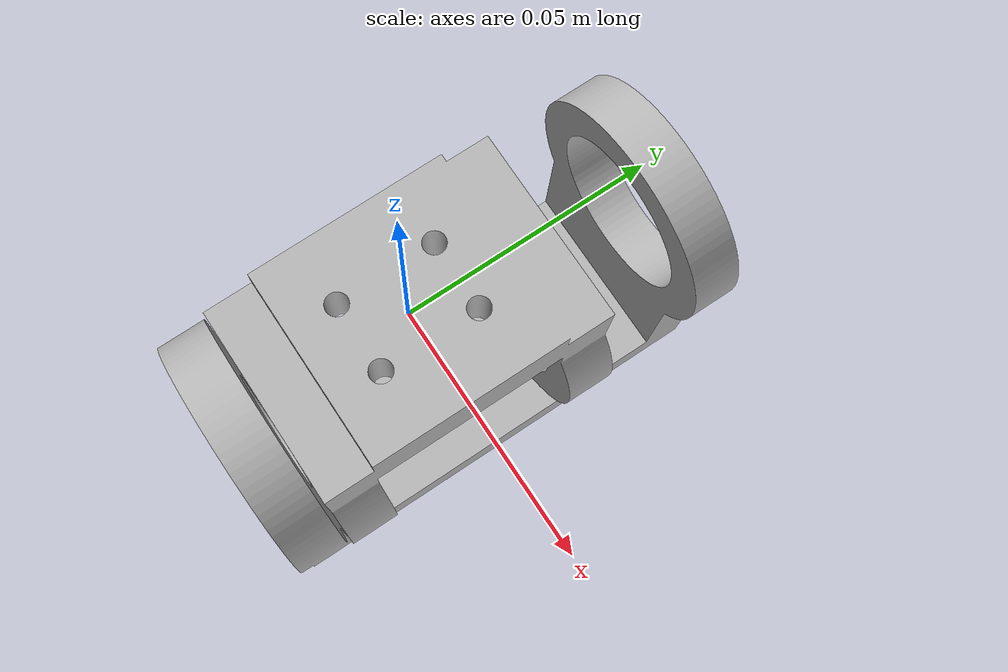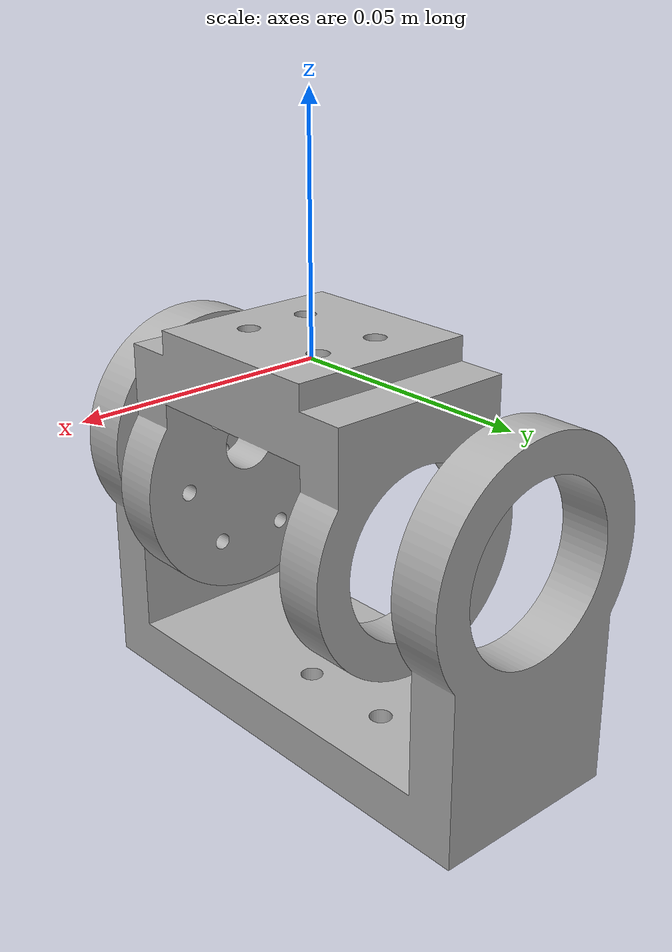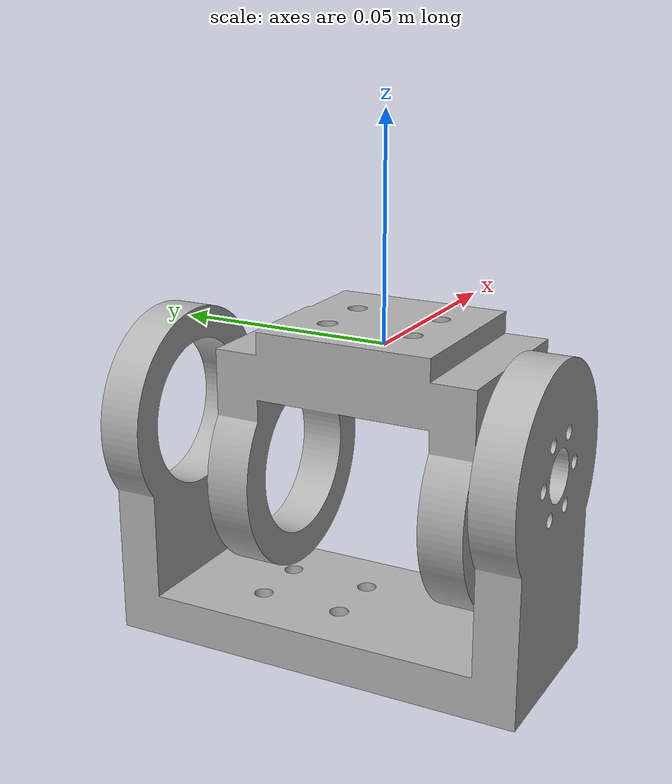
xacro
<?xml version="1.0" ?>
<robot name="test" xmlns:xacro="http://www.ros.org/wiki/xacro">

<xacro:include filename="$(find test_description)/urdf/materials.xacro" />
<xacro:include filename="$(find test_description)/urdf/test.trans" />
<xacro:include filename="$(find test_description)/urdf/test.gazebo" />
<link name="base_link">
  <inertial>
    <origin rpy="0 0 0" xyz="-1.1757426741061407e-14 -0.003404646861288589 -0.016284112731276817"/>
    <mass value="0.4516673947345944"/>
    <inertia ixx="0.000321" ixy="-0.0" ixz="-0.0" iyy="0.000205" iyz="-2.3e-05" izz="0.000266"/>
  </inertial>
  <visual>
    <origin rpy="0 0 0" xyz="0 0 0"/>
    <geometry>
      <mesh filename="package://test_description/meshes/base_link.stl" scale="0.001 0.001 0.001"/>
    </geometry>
    <material name="silver_default"/>
  </visual>
  <collision>
    <origin rpy="0 0 0" xyz="0 0 0"/>
    <geometry>
      <mesh filename="package://test_description/meshes/base_link.stl" scale="0.001 0.001 0.001"/>
    </geometry>
  </collision>
</link>

<link name="link1_1">
  <inertial>
    <origin rpy="0 0 0" xyz="-2.802851172704971e-14 0.03515174384866125 -0.027541561612835164"/>
    <mass value="0.6261133262573659"/>
    <inertia ixx="0.001184" ixy="-0.0" ixz="0.0" iyy="0.000399" iyz="5.9e-05" izz="0.000985"/>
  </inertial>
  <visual>
    <origin rpy="0 0 0" xyz="0.0 0.03 0.023"/>
    <geometry>
      <mesh filename="package://test_description/meshes/link1_1.stl" scale="0.001 0.001 0.001"/>
    </geometry>
    <material name="silver_default"/>
  </visual>
  <collision>
    <origin rpy="0 0 0" xyz="0.0 0.03 0.023"/>
    <geometry>
      <mesh filename="package://test_description/meshes/link1_1.stl" scale="0.001 0.001 0.001"/>
    </geometry>
  </collision>
</link>

<joint name="Rev1" type="continuous">
  <origin rpy="0 0 0" xyz="0.0 -0.03 -0.023"/>
  <parent link="base_link"/>
  <child link="link1_1"/>
  <axis xyz="0.0 1.0 0.0"/>
</joint>

</robot>

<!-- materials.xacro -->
<robot name="test" xmlns:xacro="http://www.ros.org/wiki/xacro" >

<material name="silver_default">
  <color rgba="0.700 0.700 0.700 1.000"/>
</material>

</robot>

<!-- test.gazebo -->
<robot name="test" xmlns:xacro="http://www.ros.org/wiki/xacro" >

<xacro:property name="body_color" value="Gazebo/Silver" />

<gazebo>
  <plugin filename="libgazebo_ros_control.so" name="control"/>
</gazebo>
<gazebo reference="base_link">
  <material>${body_color}</material>
  <mu1>0.2</mu1>
  <mu2>0.2</mu2>
  <selfCollide>true</selfCollide>
  <gravity>true</gravity>
</gazebo>

<gazebo reference="link1_1">
  <material>${body_color}</material>
  <mu1>0.2</mu1>
  <mu2>0.2</mu2>
  <selfCollide>true</selfCollide>
</gazebo>

</robot>
